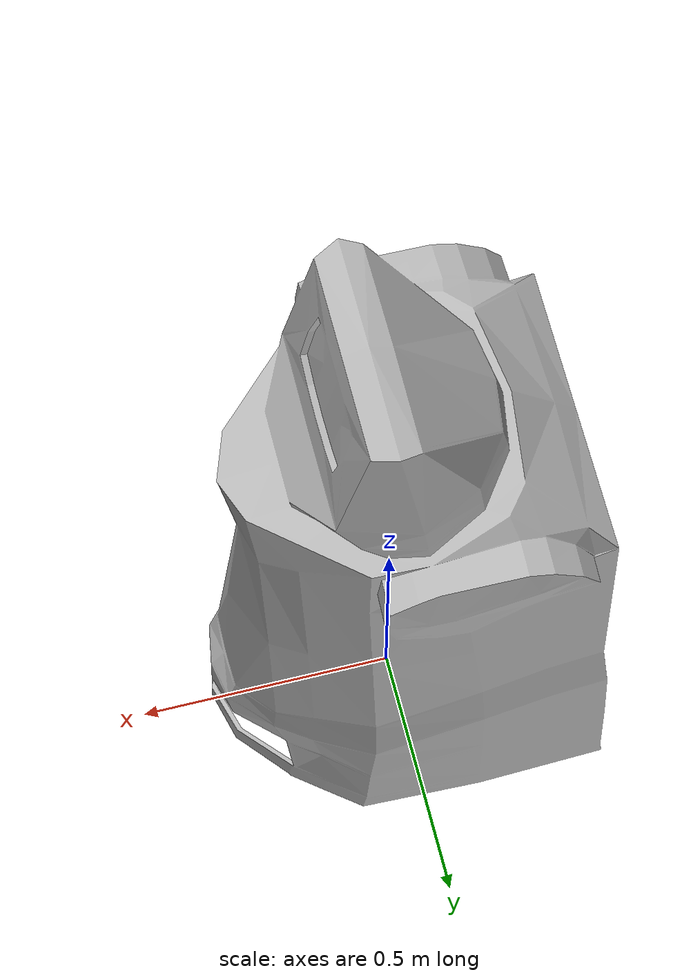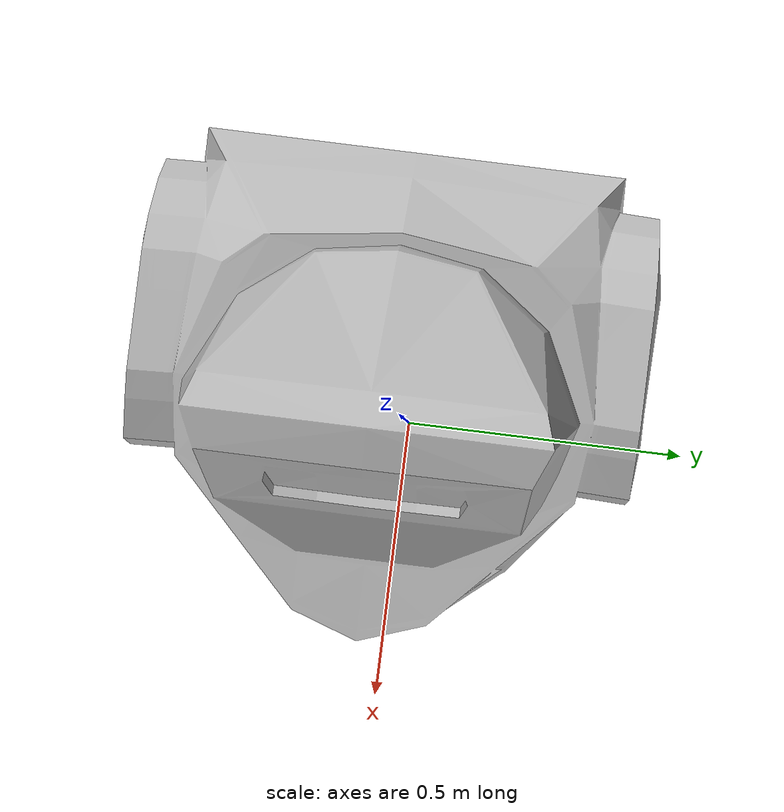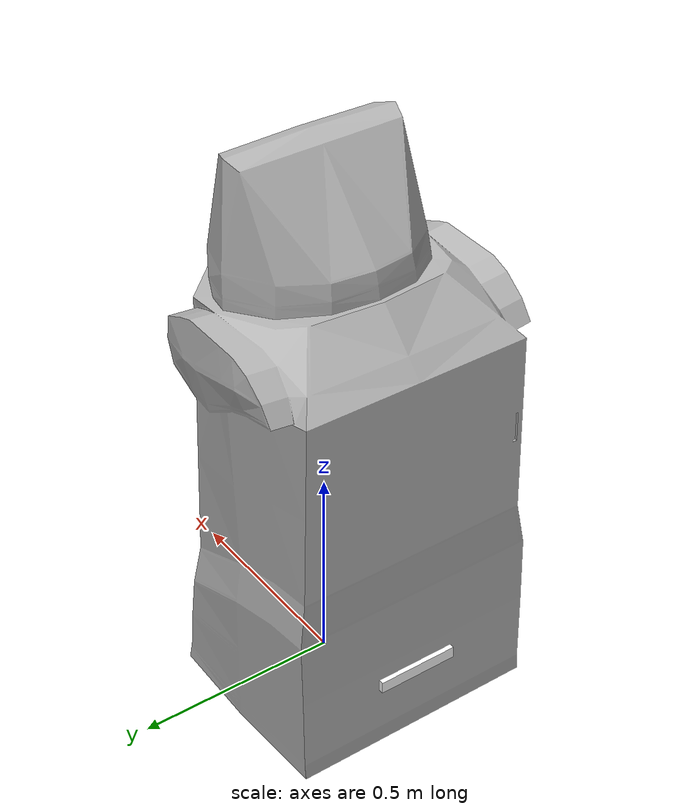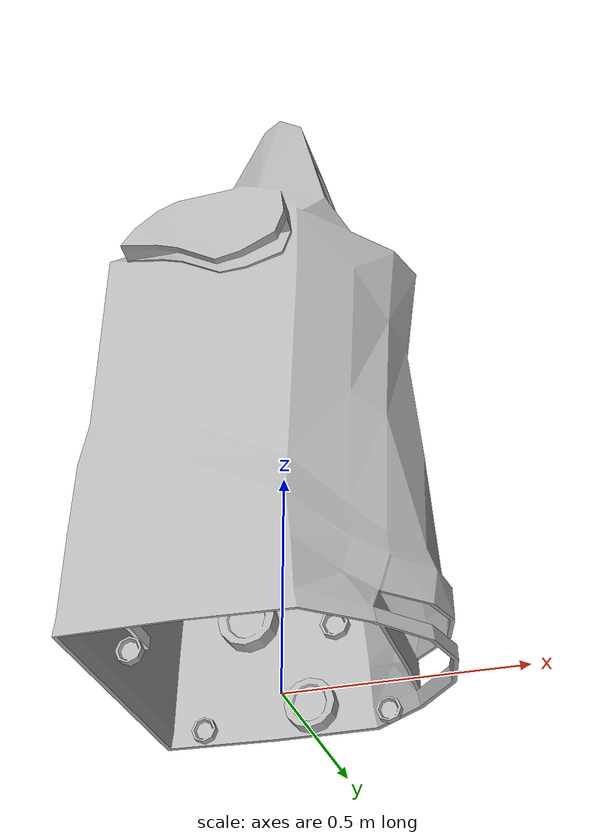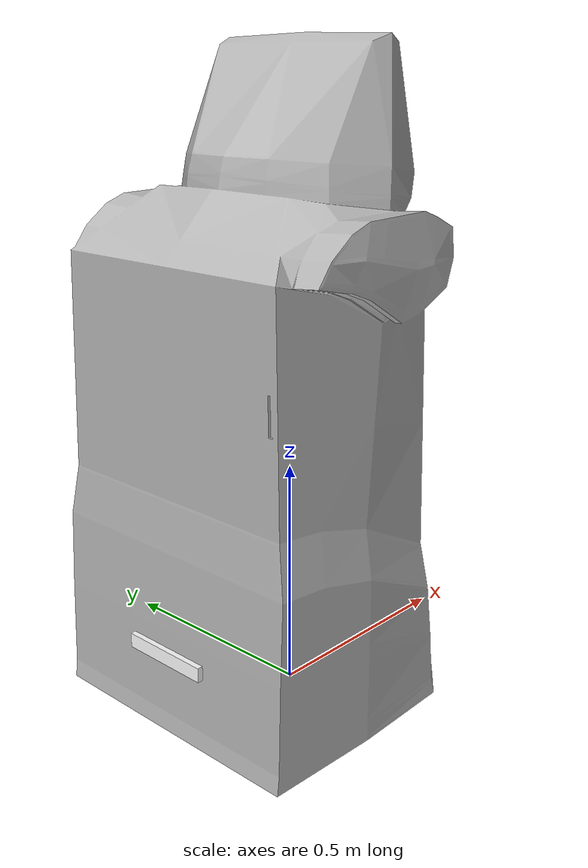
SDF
<?xml version="1.0"?>

<sdf version="1.6">
  <model name="MockRobot">

    <plugin name="mock_robot_diff_controller" filename="libgazebo_ros_diff_drive.so">
      <robotNamespace>/</robotNamespace>
      <always_on>true</always_on>
      <!-- Update rate -->
      <updateRate>10.0</updateRate>
      <!-- wheels -->
      <leftJoint>joint_tire_left</leftJoint>
      <rightJoint>joint_tire_right</rightJoint>
      <!-- kinematics -->
      <wheelSeparation>0.42</wheelSeparation>
      <wheelDiameter>1.22</wheelDiameter>
      <!-- limits -->
      <wheelTorque>150</wheelTorque>
      <wheelAcceleration>0.5</wheelAcceleration>
      <!-- output -->
      <publishOdom>true</publishOdom>
      <publishWheelTF>false</publishWheelTF>
      <odometryFrame>odom</odometryFrame>
      <publishWheelTF>chassis</publishWheelTF>
    </plugin>

    <!-- Camera -->
    <link name="camera_link">
      <pose> -0.35 0 .2 0 0 3.14</pose>
      <inertial>
        <mass>0.1</mass>
        <inertia>
          <ixx>.10</ixx>
          <iyy>.10</iyy>
          <izz>.30</izz>
        </inertia>
      </inertial>
      <collision name='collision'>
        <geometry>
          <box>
            <size>0.03 0.2 0.03</size>
          </box>
        </geometry>
      </collision>

      <visual name='visual'>
        <geometry>
          <box>
            <size>0.03 0.2 0.03</size>
          </box>
        </geometry>

        <material>
          <ambient>1 0 0 1</ambient>
          <diffuse>1 1 1 1</diffuse>
          <specular>0.1 0.1 0.1 1</specular>
          <emissive>0 0 0 0</emissive>
        </material>
      </visual>

      <!-- camera plugin -->
      <!-- refered to realsense rgb camera profile -->
      <sensor type="camera" name="camera1">
        <update_rate>10.0</update_rate>
        <camera name="head">
          <horizontal_fov>1.204</horizontal_fov>
          <image>
              <width>711</width>
              <height>400</height>
            <format>R8G8B8</format>
          </image>
          <clip>
            <near>0.02</near>
            <far>300</far>
          </clip>
          <noise>
            <type>gaussian</type>
            <!-- Noise is sampled independently per pixel on each frame.
                That pixel's noise value is added to each of its color
                channels, which at that point lie in the range [0,1]. -->
            <mean>0.0</mean>
            <stddev>0.02</stddev>
          </noise>
        </camera>
        <plugin name="camera_controller" filename="libgazebo_ros_camera.so">
          <alwaysOn>true</alwaysOn>
          <updateRate>0.0</updateRate>
          <cameraName>/camera/color</cameraName>
          <imageTopicName>image_raw</imageTopicName>
          <cameraInfoTopicName>camera_info</cameraInfoTopicName>
          <frameName>camera_link</frameName>
          <hackBaseline>0.07</hackBaseline>
          <distortionK1>0.0</distortionK1>
          <distortionK2>0.0</distortionK2>
          <distortionK3>0.0</distortionK3>
          <distortionT1>0.0</distortionT1>
          <distortionT2>0.0</distortionT2>
        </plugin>
      </sensor>
    </link>

    <link name="body">
      <pose>0 0 0 0 0 0</pose>

      <inertial>
        <pose>0 0 0.693 0 0 0</pose>
        <mass>170</mass>
        <inertia>
          <ixx>34.6605</ixx>
          <iyy>32.8369</iyy>
          <izz>13.0691</izz>
        </inertia>
      </inertial>

      <collision name="collision">
        <pose>0 0 0.7 0 0 0</pose>
        <geometry>
          <box>
            <size>0.7 0.7 1.4</size>
          </box>
        </geometry>
        <surface>
          <friction>
            <torsional>
              <coefficient>0.0</coefficient>
            </torsional>
            <ode>
              <mu>0.0</mu>
              <mu2>0.0</mu2>
            </ode>
            <bullet>
              <friction>0.0</friction>
              <friction2>0.0</friction2>
              <rolling_friction>0.0</rolling_friction>
            </bullet>
          </friction>
        </surface>
      </collision>

      <visual name="visual">
        <geometry>
          <mesh><uri>model://MockRobot/meshes/MockRobot.obj</uri></mesh>
        </geometry>
      </visual>
      <visual name="front_wheel_left">
      <pose>.17 -.21 .03 0 0 0</pose>
        <geometry>
          <mesh><uri>model://MockRobot/meshes/SmallWheel.obj</uri></mesh>
        </geometry>
      </visual>
      <visual name="back_wheel_left">
      <pose>-.24 -.21 .03 0 0 0</pose>
        <geometry>
          <mesh><uri>model://MockRobot/meshes/SmallWheel.obj</uri></mesh>
        </geometry>
      </visual>
      <visual name="front_wheel_right">
      <pose>.17 .21 .03 0 0 0</pose>
        <geometry>
          <mesh><uri>model://MockRobot/meshes/SmallWheel.obj</uri></mesh>
        </geometry>
      </visual>
      <visual name="back_wheel_right">
      <pose>-.24 .21 .03 0 0 0</pose>
        <geometry>
          <mesh><uri>model://MockRobot/meshes/SmallWheel.obj</uri></mesh>
        </geometry>
      </visual>
    </link>

    <link name="suspension_tire_left">
      <!-- This is a dummy link that's used to connect a suspension (prismatic
           joint) to the tire axis (revolute joint) -->
      <pose>0 .21 .06 0 0 0</pose>
      <inertial>
        <mass>1.00</mass>
        <inertia>
          <ixx>1.00</ixx>
          <iyy>1.00</iyy>
          <izz>1.00</izz>
        </inertia>
      </inertial>
    </link>

    <joint name="joint_suspension_tire_left" type="prismatic">
      <parent>body</parent>
      <child>suspension_tire_left</child>
      <axis>
        <xyz>0 0 1</xyz>
        <dynamics>
          <damping>500</damping>
          <spring_reference>-0.05</spring_reference>
          <spring_stiffness>2000</spring_stiffness>
        </dynamics>
      </axis>
      <physics>
        <ode>
          <implicit_spring_damper>true</implicit_spring_damper>
        </ode>
      </physics>
    </joint>

    <link name="tire_left">
      <pose>0 .21 .06 0 0 0</pose>
      <inertial>
        <pose>0 0 0 0 0 0</pose>
        <mass>5.0</mass>
        <inertia>
          <ixx>0.757897446874</ixx>
          <iyy>1.302975553365</iyy>
          <izz>0.757897446874</izz>
        </inertia>
      </inertial>
      <visual name="fat_wheel_left">
        <geometry>
          <mesh><uri>model://MockRobot/meshes/FatWheel.obj</uri></mesh>
        </geometry>
      </visual>
      <collision name="tire_left">
        <geometry>
          <sphere><radius>0.06137</radius></sphere>
        </geometry>
        <surface>
          <contact>
            <ode>
              <kp>10000000.0</kp>
              <kd>1.0</kd>
            </ode>
          </contact>
        </surface>
      </collision>
    </link>

    <joint name="joint_tire_left" type="revolute">
      <parent>suspension_tire_left</parent>
      <child>tire_left</child>
      <axis>
        <xyz>0 1 0</xyz>
      </axis>
    </joint>

    <link name="suspension_tire_right">
      <!-- This is a dummy link that's used to connect a suspension (prismatic
           joint) to the tire axis (revolute joint) -->
      <pose>0 -.21 .06 0 0 0</pose>
      <inertial>
        <mass>1.00</mass>
        <inertia>
          <ixx>1.00</ixx>
          <iyy>1.00</iyy>
          <izz>1.00</izz>
        </inertia>
      </inertial>
    </link>

    <joint name="joint_suspension_tire_right" type="prismatic">
      <parent>body</parent>
      <child>suspension_tire_right</child>
      <axis>
        <xyz>0 0 1</xyz>
        <dynamics>
          <damping>500</damping>
          <spring_reference>-0.05</spring_reference>
          <spring_stiffness>2000</spring_stiffness>
        </dynamics>
      </axis>
      <physics>
        <ode>
          <implicit_spring_damper>true</implicit_spring_damper>
        </ode>
      </physics>
    </joint>

    <link name="tire_right">
      <pose>0 -.21 .06 0 0 0</pose>
      <inertial>
        <pose>0 0 0 0 0 0</pose>
        <mass>5.0</mass>
        <inertia>
          <ixx>0.757897446874</ixx>
          <iyy>1.302975553365</iyy>
          <izz>0.757897446874</izz>
        </inertia>
      </inertial>
      <visual name="fat_wheel_right">
        <geometry>
          <mesh><uri>model://MockRobot/meshes/FatWheel.obj</uri></mesh>
        </geometry>
      </visual>
      <collision name="tire_right">
        <geometry>
          <sphere><radius>0.06137</radius></sphere>
        </geometry>
        <surface>
          <contact>
            <ode>
              <kp>10000000.0</kp>
              <kd>1.0</kd>
            </ode>
          </contact>
        </surface>
      </collision>
    </link>

    <joint name="joint_tire_right" type="revolute">
      <parent>suspension_tire_right</parent>
      <child>tire_right</child>
      <axis>
        <xyz>0 1 0</xyz>
      </axis>
    </joint>

    <joint name="camera_joint" type="fixed">
      <parent>body</parent>
      <child>camera_link</child>
      <axis>
        <xyz>0 0 2</xyz>
      </axis>
    </joint>

  </model>
</sdf>
